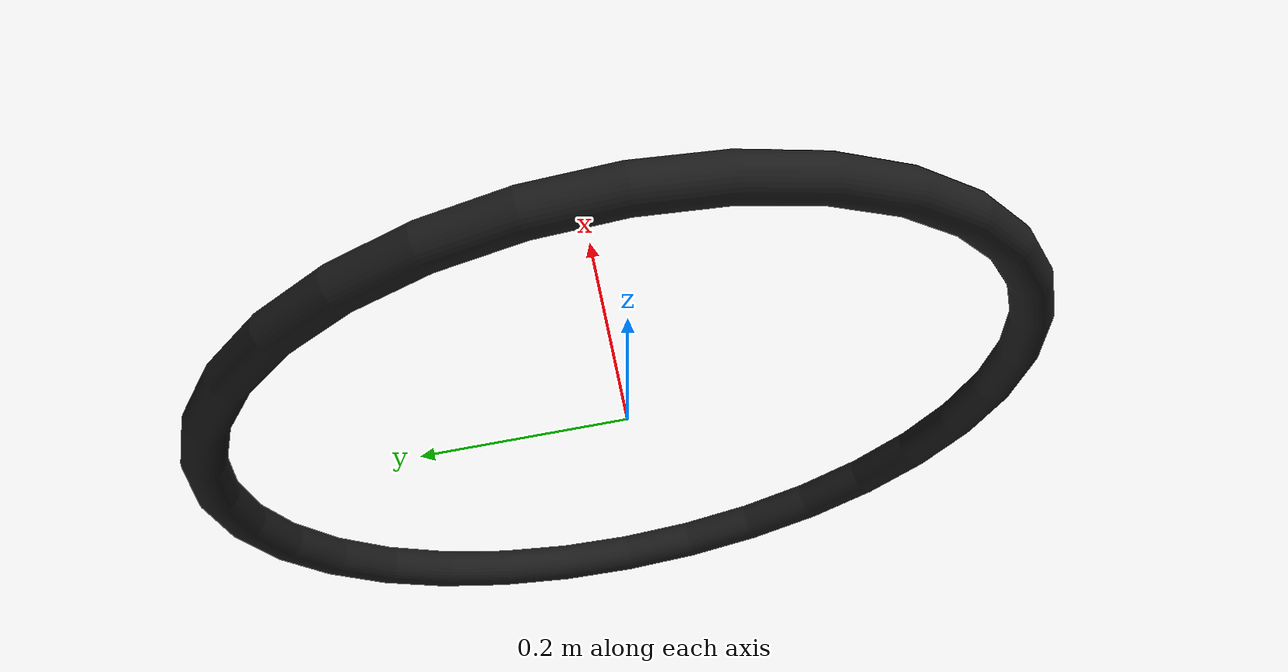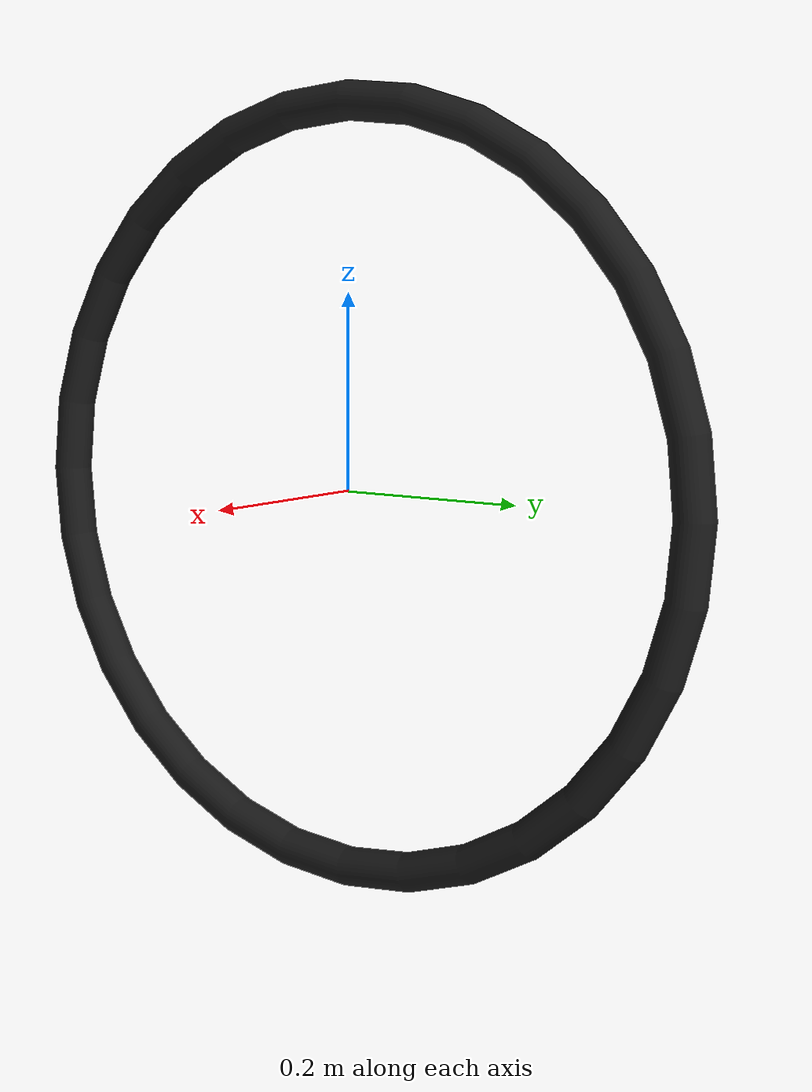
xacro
<?xml version="1.0"?>

<robot name="hula" xmlns:xacro="http://www.ros.org/wiki/xacro" >
  <xacro:arg name="debug" default="0"/>
  <xacro:arg name="namespace" default="hula"/>
  <xacro:include filename="$(find hula_description)/urdf/hula.urdf.xacro"/>
  <xacro:hula namespace="$(arg namespace)" debug="$(arg debug)"/>
</robot>

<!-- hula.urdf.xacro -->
<robot name="hula" xmlns:xacro="http://www.ros.org/wiki/xacro">

  <xacro:property name="PI" value="3.141592" />
  <xacro:property name="body" value="file://$(find hula_description)/mesh/hula.dae"/>

  <xacro:macro name="hula" params="namespace debug">

  <!-- Links. -->
  <link name="hula/base_link">
    <visual>
      <origin xyz="0 0. 0" rpy="0 ${pi/2.} 0"/>
      <geometry>
        <mesh filename="${body}" scale="1 1 1"/>
      </geometry>
      <material name="White">
        <color rgba="0.1 0.1 0.1 0.9"/>
      </material>
    </visual>
  </link>

  </xacro:macro>

</robot>
